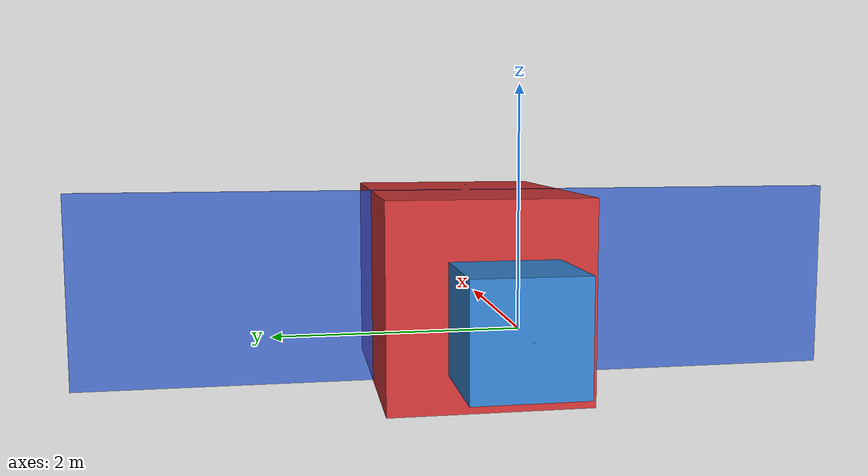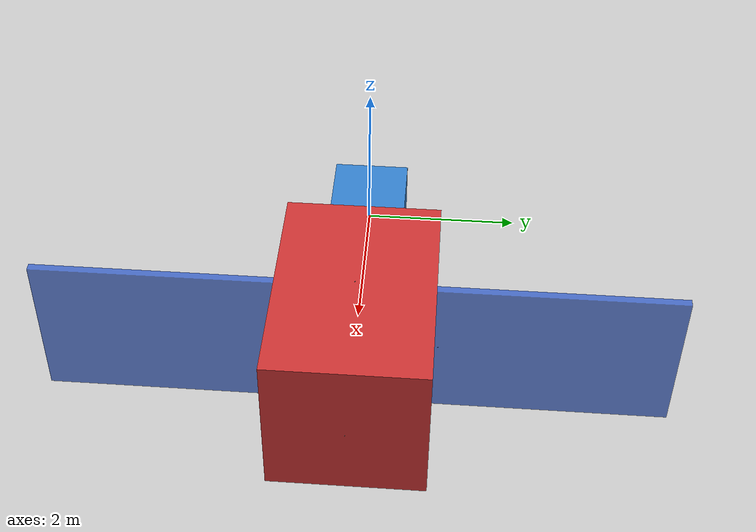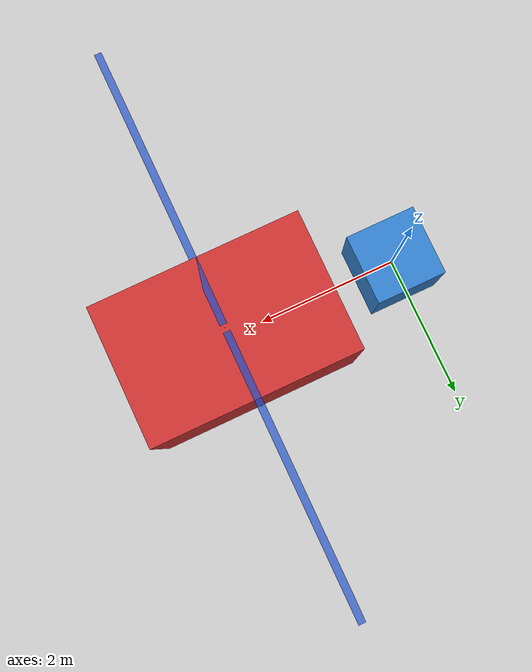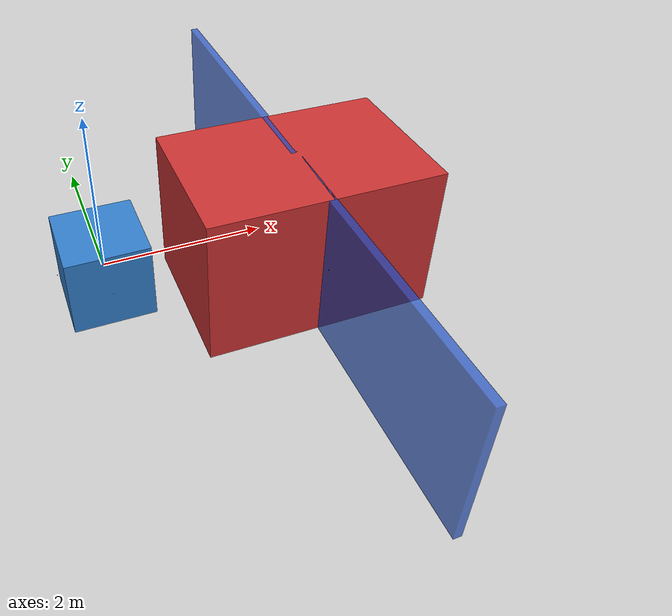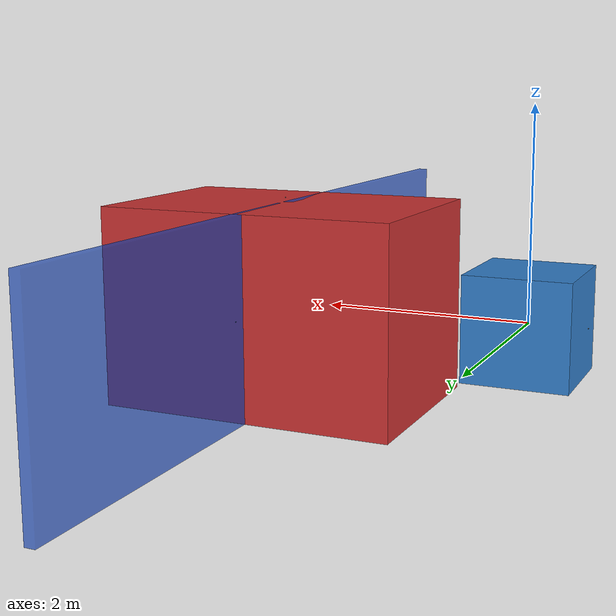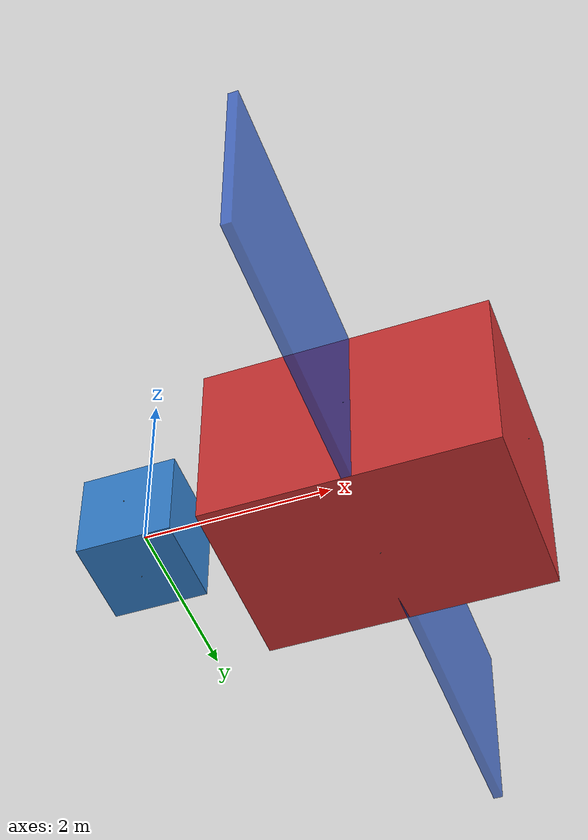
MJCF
<mujoco model="spacecraft_combo">
  <compiler angle="radian" meshdir="../meshes"/>

  <option timestep="0.002" gravity="0 0 0"/>

  <visual>
    <global offwidth="1920" offheight="1920"/>
  </visual>

  <default>
    <geom rgba="0.5 0.5 0.5 1"/>
  </default>

  <worldbody>
    <body name="service_sat" pos="0 0 0">
      <freejoint/>
      <inertial pos="0 0 0" mass="100"
                diaginertia="16.667 16.667 16.667"/>
      <geom name="service_body" type="box" size="0.5 0.5 0.5"
            rgba="0.2 0.5 0.8 1"/>
      <site name="s_thr_px" pos="0.55 0 0"    euler="0 1.5708 0"/>
      <site name="s_thr_nx" pos="-0.55 0 0"   euler="0 -1.5708 0"/>
      <site name="s_thr_py" pos="0 0.55 0"    euler="-1.5708 0 0"/>
      <site name="s_thr_ny" pos="0 -0.55 0"   euler="1.5708 0 0"/>
      <site name="s_thr_pz" pos="0 0 0.55"    euler="0 0 0"/>
      <site name="s_thr_nz" pos="0 0 -0.55"   euler="3.1416 0 0"/>
      <site name="s_thr_aux1" pos="0.3 0.3 0.3"   euler="0.785 0.615 0"/>
      <site name="s_thr_aux2" pos="-0.3 -0.3 -0.3" euler="-2.356 0.615 0"/>
    </body>

    <body name="target_sat" pos="2.5 0 0">
      <freejoint/>
      <inertial pos="0 0 0" mass="500"
                diaginertia="416.667 541.667 541.667"/>
      <geom name="target_body" type="box" size="1.5 1.0 1.0"
            rgba="0.8 0.2 0.2 1"/>
      <geom name="target_panel_py" type="box" size="0.05 2.0 1.0"
            pos="0 2.05 0" rgba="0.1 0.3 0.8 0.7"/>
      <geom name="target_panel_ny" type="box" size="0.05 2.0 1.0"
            pos="0 -2.05 0" rgba="0.1 0.3 0.8 0.7"/>
      <site name="t_thr_px" pos="1.55 0 0"    euler="0 1.5708 0"/>
      <site name="t_thr_nx" pos="-1.55 0 0"   euler="0 -1.5708 0"/>
      <site name="t_thr_py" pos="0 1.05 0"    euler="-1.5708 0 0"/>
      <site name="t_thr_ny" pos="0 -1.05 0"   euler="1.5708 0 0"/>
      <site name="t_thr_pz" pos="0 0 1.05"    euler="0 0 0"/>
      <site name="t_thr_nz" pos="0 0 -1.05"   euler="3.1416 0 0"/>
      <site name="t_thr_aux1" pos="0.5 0.5 0.5"    euler="0.785 0.615 0"/>
      <site name="t_thr_aux2" pos="-0.5 -0.5 -0.5" euler="-2.356 0.615 0"/>
    </body>
  </worldbody>

  <equality>
    <weld name="captured" body1="service_sat" body2="target_sat"
          relpose="2.5 0 0 1 0 0 0"/>
  </equality>

  <actuator>
    <general name="tau_x" site="s_thr_px" gaintype="fixed"/>
    <general name="tau_y" site="s_thr_py" gaintype="fixed"/>
    <general name="tau_z" site="s_thr_pz" gaintype="fixed"/>
  </actuator>
</mujoco>
